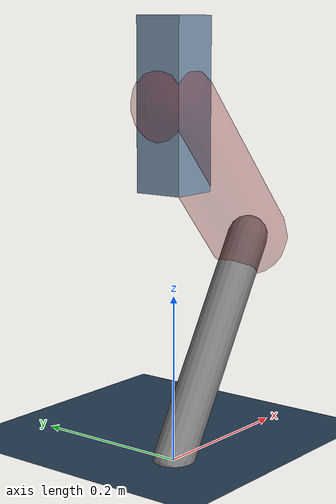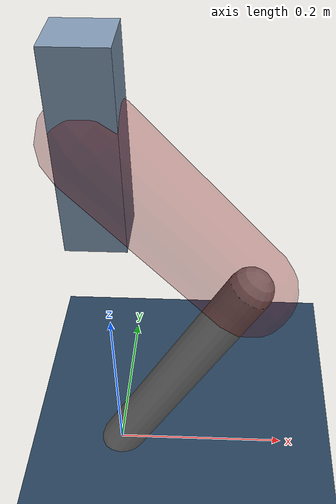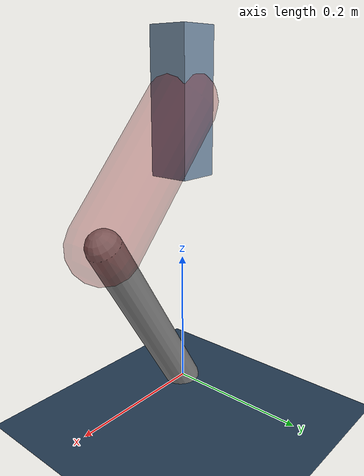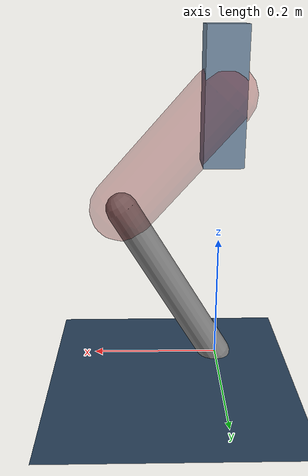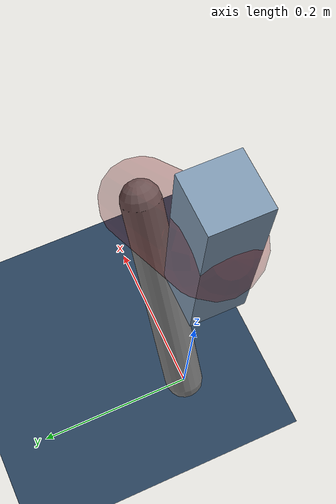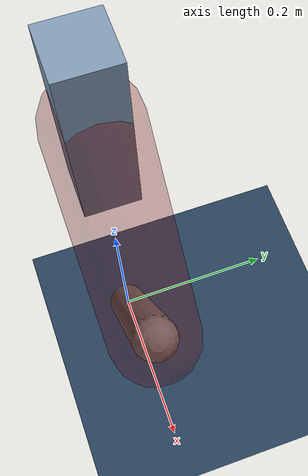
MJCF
<mujoco model="Hopper2D">
	<compiler inertiafromgeom="true" angle="radian" />
	<option timestep="0.001" integrator="implicit" cone="elliptic" solver="Newton" tolerance="1e-10" />

	<default>
		<geom contype="1" conaffinity="1" condim="3" friction="2 0.005 0.0001" solref="0.005 1" />
		<joint limited="true" damping="0.1" />
	</default>

	<asset>
		<texture name="skybox" type="skybox" builtin="gradient" rgb1=".4 .6 .8" rgb2="0 0 0" width="800" height="800" />
		<texture name="grid" type="2d" builtin="checker" rgb1=".1 .2 .3" rgb2=".2 .3 .4" width="300" height="300" mark="edge" markrgb=".2 .3 .4" />
		<material name="ground" texture="grid" texrepeat="1 1" texuniform="true" reflectance="0.1" />
		<material name="leg" rgba="0.5 0.6 0.7 1" />
	</asset>

	<worldbody>

		<geom name="floor" type="plane" size="5 5 0.25" material="ground" />

		<light directional="false" diffuse="0.8 0.8 0.8" specular="0.3 0.3 0.3" pos="0 0 2" dir="0 0 -1" />
		<light mode="targetbodycom" target="base" directional="false" diffuse="0.8 0.8 0.8" specular="0.3 0.3 0.3" pos="0 0 2" dir="0 0 -1" />

		<camera name="fixed" pos="0 -2 1" xyaxes="1 0 0 0 0 1" />
		<camera name="tracking" mode="trackcom" pos="0 -3 1" />

		<body name="root" pos="0 0 0.42308813603238393">
			<joint name="slide_x" type="slide" axis="1 0 0" range="-100 100" />
			<joint name="slide_z" type="slide" axis="0 0 1" range="0 10" />

			<body name="base" pos="0 0 0">
				<geom name="torso" type="box" size="0.03 0.03 0.1" mass="2.065" material="leg" />

				<body name="link1" pos="0 0 0" euler="0 0.8442351698536141 0">
					<joint type="hinge" axis="0 -1 0" pos="0 0 0" name="hinge1" limited="true" range="-3.14 3.14" stiffness="0" damping="0.1" />
					<geom name="thigh" type="capsule" fromto="0 0 0 0.22741126423587107 0 0" size="0.05" rgba="0.5 0 0 0.3" mass="0.7984281605896777" />

					<body name="link2" pos="0.22741126423587107 0 0" euler="0 1.2646710590077834 0">
						<joint type="hinge" axis="0 -1 0" pos="0 0 0" name="hinge2" limited="true" range="-3.14 3.14" stiffness="0" damping="0.1" />
						<geom name="shank" type="capsule" fromto="0 0 0 0.29476276665944956 0 0" size="0.025" mass="0.4791864899935046" />

					</body>
				</body>
			</body>
		</body>
	</worldbody>

	<actuator>
		<motor name="torque1" joint="hinge1" ctrlrange="-36.986257208121536 36.986257208121536" ctrllimited="true" gear="1" />
		<motor name="torque2" joint="hinge2" ctrlrange="-112.47612136717714 112.47612136717714" ctrllimited="true" gear="1" />
	</actuator>
</mujoco>
